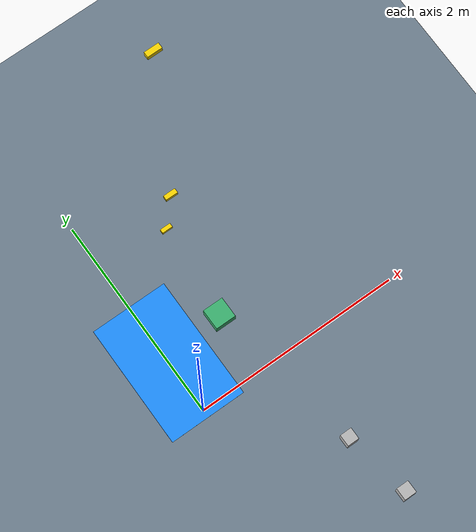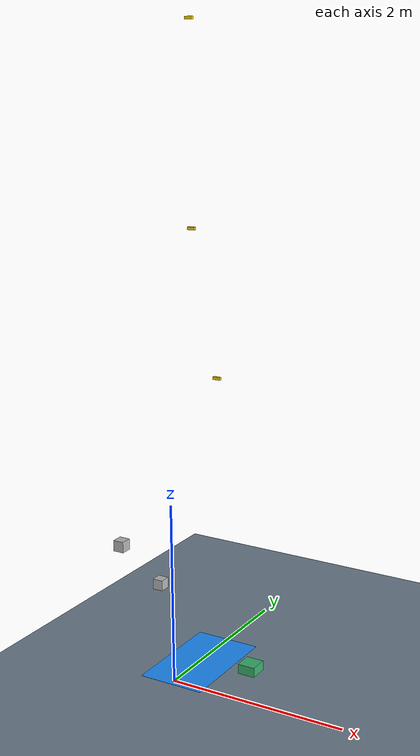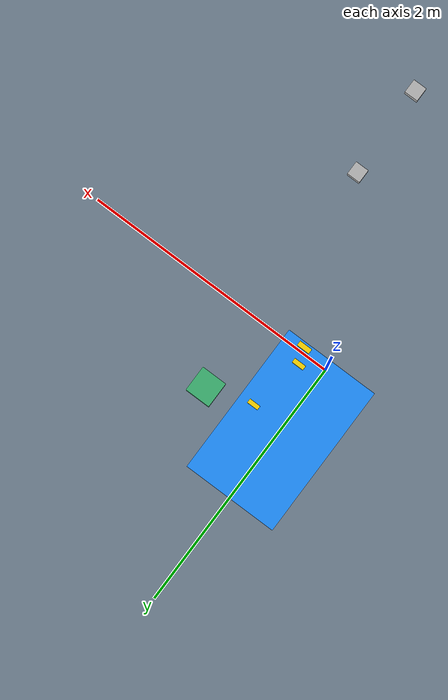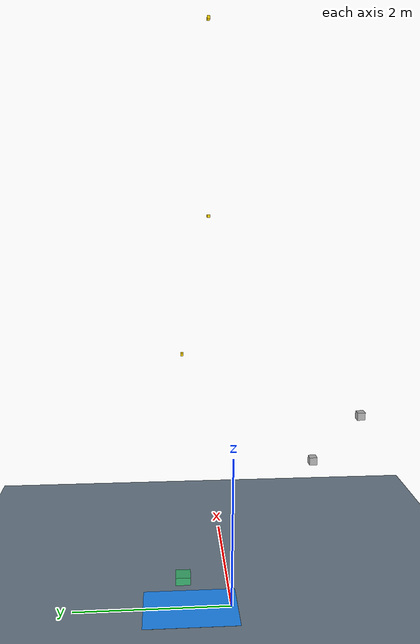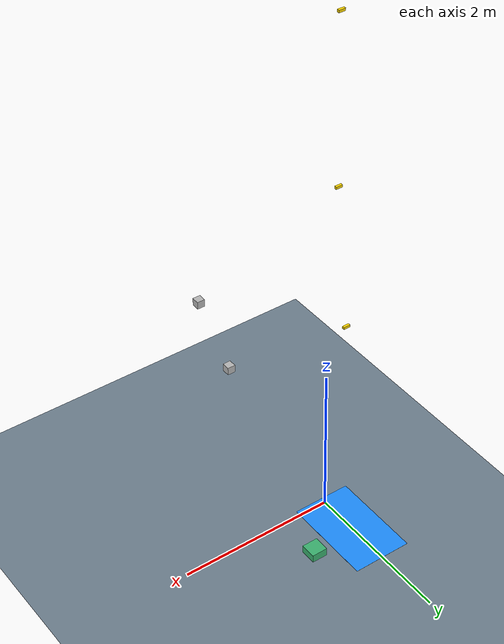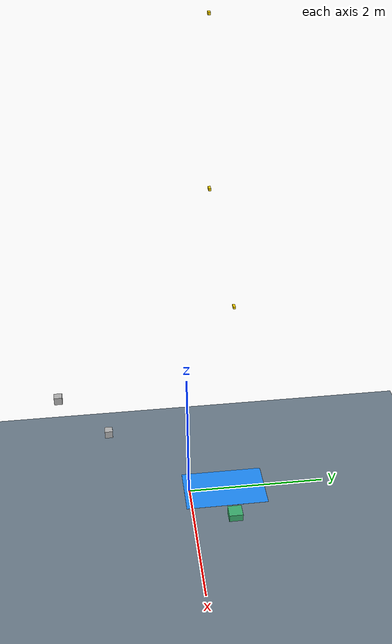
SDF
<sdf version='1.6'>
  <world name='default'>
    <plugin name="ros_link_attacher_plugin" filename="libgazebo_ros_link_attacher.so"/>

    <light name='sun' type='directional'>
      <cast_shadows>1</cast_shadows>
      <pose frame=''>0 0 10 0 -0 0</pose>
      <diffuse>0.8 0.8 0.8 1</diffuse>
      <specular>0.2 0.2 0.2 1</specular>
      <attenuation>
        <range>1000</range>
        <constant>0.9</constant>
        <linear>0.01</linear>
        <quadratic>0.001</quadratic>
      </attenuation>
      <direction>-0.5 0.1 -0.9</direction>
    </light>

    <model name='ground_plane'>
      <static>1</static>
      <link name='link'>
        <collision name='collision'>
          <geometry>
            <plane>
              <normal>0 0 1</normal>
              <size>100 100</size>
            </plane>
          </geometry>
          <surface>
            <contact>
              <collide_bitmask>65535</collide_bitmask>
              <ode/>
            </contact>
            <friction>
              <ode>
                <mu>100</mu>
                <mu2>50</mu2>
              </ode>
              <torsional>
                <ode/>
              </torsional>
            </friction>
            <bounce/>
          </surface>
          <max_contacts>10</max_contacts>
        </collision>
        <visual name='visual'>
          <cast_shadows>0</cast_shadows>
          <geometry>
            <plane>
              <normal>0 0 1</normal>
              <size>5 5</size>
            </plane>
          </geometry>
          <material>
            <lighting>1</lighting>
            <shader type='vertex'>
              <normal_map>__default__</normal_map>
            </shader>
            <ambient>0.43 0.5 0.56 1</ambient>
            <diffuse>0.43 0.5 0.56 1</diffuse>
            <specular>0.01 0.01 0.01 1</specular>
            <emissive>0 0 0 1</emissive>
          </material>
        </visual>
        <self_collide>0</self_collide>
        <enable_wind>0</enable_wind>
        <kinematic>0</kinematic>
      </link>
    </model>

    <gravity>0 0 -9.8</gravity>
    <magnetic_field>6e-06 2.3e-05 -4.2e-05</magnetic_field>
    <atmosphere type='adiabatic'/>
    <physics name='default_physics' default='0' type='ode'>
      <max_step_size>0.001</max_step_size>
      <real_time_factor>1</real_time_factor>
      <real_time_update_rate>1000</real_time_update_rate>
    </physics>
    <scene>
      <ambient>0.4 0.4 0.4 1</ambient>
      <background>0.7 0.7 0.7 1</background>
      <shadows>1</shadows>
    </scene>
    <audio>
      <device>default</device>
    </audio>
    <wind/>
    <spherical_coordinates>
      <surface_model>EARTH_WGS84</surface_model>
      <latitude_deg>0</latitude_deg>
      <longitude_deg>0</longitude_deg>
      <elevation>0</elevation>
      <heading_deg>0</heading_deg>
    </spherical_coordinates>

    <!-- The table top of the robot -->
    <model name='table'>
      <link name='link'>
        <inertial>
          <mass>1</mass>
          <inertia>
            <ixx>0.166667</ixx>
            <ixy>0</ixy>
            <ixz>0</ixz>
            <iyy>0.166667</iyy>
            <iyz>0</iyz>
            <izz>0.166667</izz>
          </inertia>
          <pose frame=''>0 0 0 0 -0 0</pose>
        </inertial>
        <pose frame=''>0 0 0 0 -0 0</pose>
        <gravity>1</gravity>
        <self_collide>0</self_collide>
        <kinematic>0</kinematic>
        <enable_wind>0</enable_wind>
        <visual name='visual'>
          <pose frame=''>0 0 0 0 -0 0</pose>
          <geometry>
            <box>
              <size>0.75 1.20 0.001</size>
            </box>
          </geometry>
          <material>
            <lighting>1</lighting>
            <shader type='vertex'>
              <normal_map>__default__</normal_map>
            </shader>
            <ambient>0.12 0.56 1 1</ambient>
            <diffuse>0.12 0.56 1 1</diffuse>
            <specular>0.01 0.01 0.01 1</specular>
            <emissive>0 0 0 1</emissive>
          </material>
          <transparency>0</transparency>
          <cast_shadows>1</cast_shadows>
        </visual>
        <collision name='collision'>
          <pose frame=''>0 0 0 0 -0 0</pose>
          <geometry>
            <box>
              <size>0.75 1.20 0.001</size>
            </box>
          </geometry>
        </collision>
      </link>
      <static>1</static>
      <allow_auto_disable>1</allow_auto_disable>
      <pose frame=''>0 0.525 0.0005 0 -0 0</pose>
    </model>

    <model name='goal'>
      <link name='link'>
        <inertial>
          <mass>1</mass>
          <inertia>
            <ixx>0.166667</ixx>
            <ixy>0</ixy>
            <ixz>0</ixz>
            <iyy>0.166667</iyy>
            <iyz>0</iyz>
            <izz>0.166667</izz>
          </inertia>
          <pose frame=''>0 0 0 0 -0 0</pose>
        </inertial>
        <self_collide>0</self_collide>
        <enable_wind>0</enable_wind>
        <kinematic>0</kinematic>
        <pose frame=''>0 0 0 0 -0 0</pose>
        <gravity>1</gravity>
        <visual name='visual'>
          <geometry>
            <box>
              <size>0.2 0.2 0.2</size>
            </box>
          </geometry>
          <material>
            <shader type='vertex'>
              <normal_map>__default__</normal_map>
            </shader>
            <ambient>0.23 0.7 0.44 1</ambient>
            <diffuse>0.23 0.7 0.44 1</diffuse>
            <specular>0.01 0.01 0.01 1</specular>
            <emissive>0 0 0 1</emissive>
          </material>
          <pose frame=''>0 0 0 0 -0 0</pose>
          <transparency>0</transparency>
          <cast_shadows>1</cast_shadows>
        </visual>
        <collision name='collision'>
          <surface>
            <contact>
              <ode>
                <max_vel>0</max_vel>
                <min_depth>0.001</min_depth>
              </ode>
            </contact>
          </surface>
          <pose frame=''>0 0 0 0 -0 0</pose>
          <geometry>
            <box>
              <size>0.07 0.07 0.05</size>
            </box>
          </geometry>
        </collision>
      </link>
      <static>0</static>
      <allow_auto_disable>1</allow_auto_disable>
      <pose frame=''>0.6 0.6 0.001 0 -0 0</pose>
    </model>

    <model name='block_1'>
      <link name='link'>
        <inertial>
          <mass>10</mass>
          <inertia>
            <ixx>0</ixx>
            <ixy>0</ixy>
            <ixz>0</ixz>
            <iyy>0</iyy>
            <iyz>0</iyz>
            <izz>0</izz>
          </inertia>
          <pose frame=''>0 0 0 0 -0 0</pose>
        </inertial>
        <self_collide>0</self_collide>
        <enable_wind>0</enable_wind>
        <kinematic>0</kinematic>
        <pose frame=''>0.1 0.3 0.841 0 -0 0</pose>
        <gravity>1</gravity>
        <visual name='visual'>
          <geometry>
            <box>
              <size>0.08 0.03 0.03</size>
            </box>
          </geometry>
          <material>
            <shader type='vertex'>
              <normal_map>__default__</normal_map>
            </shader>
            <ambient>1 0.85 0 1</ambient>
            <diffuse>1 0.85 0 1</diffuse>
            <specular>0.01 0.01 0.01 1</specular>
            <emissive>0 0 0 1</emissive>
          </material>
          <pose frame=''>0 0 0 0 -0 0</pose>
          <transparency>0</transparency>
          <cast_shadows>1</cast_shadows>
        </visual>
        <collision name='collision'>
          <surface>
            <contact>
              <ode>
                <max_vel>0</max_vel>
                <min_depth>0.001</min_depth>
              </ode>
            </contact>
          </surface>
          <pose frame=''>0 0 0 0 -0 0</pose>
          <geometry>
            <box>
              <size>0.08 0.03 0.03</size>
            </box>
          </geometry>
        </collision>
      </link>
      <static>0</static>
      <allow_auto_disable>1</allow_auto_disable>
      <pose frame=''>0.1 0.3 2.41 0 -0 0</pose>
    </model>

    <model name='block_2'>
      <link name='link'>
        <inertial>
          <mass>10</mass>
          <inertia>
            <ixx>0</ixx>
            <ixy>0</ixy>
            <ixz>0</ixz>
            <iyy>0</iyy>
            <iyz>0</iyz>
            <izz>0</izz>
          </inertia>
          <pose frame=''>0 0 0 0 -0 0</pose>
        </inertial>
        <self_collide>0</self_collide>
        <enable_wind>0</enable_wind>
        <kinematic>0</kinematic>
        <pose frame=''>0 0 0 0 -0 0</pose>
        <gravity>1</gravity>
        <visual name='visual'>
          <geometry>
            <box>
              <size>0.08 0.03 0.03</size>
            </box>
          </geometry>
          <material>
            <shader type='vertex'>
              <normal_map>__default__</normal_map>
            </shader>
            <ambient>1 0.85 0 1</ambient>
            <diffuse>1 0.85 0 1</diffuse>
            <specular>0.01 0.01 0.01 1</specular>
            <emissive>0 0 0 1</emissive>
          </material>
          <pose frame=''>0 0 0 0 -0 0</pose>
          <transparency>0</transparency>
          <cast_shadows>1</cast_shadows>
        </visual>
        <collision name='collision'>
          <surface>
            <contact>
              <ode>
                <max_vel>0</max_vel>
                <min_depth>0.001</min_depth>
              </ode>
            </contact>
          </surface>
          <pose frame=''>0 0 0 0 -0 0</pose>
          <geometry>
            <box>
              <size>0.08 0.03 0.03</size>
            </box>
          </geometry>
        </collision>
      </link>
      <static>0</static>
      <allow_auto_disable>1</allow_auto_disable>
      <pose frame=''>0.1 0.3 4.841 0 -0 0</pose>
    </model>

    <model name='block_none'>
      <link name='link'>
        <inertial>
          <mass>10</mass>
          <inertia>
            <ixx>0</ixx>
            <ixy>0</ixy>
            <ixz>0</ixz>
            <iyy>0</iyy>
            <iyz>0</iyz>
            <izz>0</izz>
          </inertia>
          <pose frame=''>0 0 0 0 -0 0</pose>
        </inertial>
        <self_collide>0</self_collide>
        <enable_wind>0</enable_wind>
        <kinematic>0</kinematic>
        <pose frame=''>0 0 0 0 -0 0</pose>
        <gravity>1</gravity>
        <visual name='visual'>
          <geometry>
            <box>
              <size>0.08 0.03 0.03</size>
            </box>
          </geometry>
          <material>
            <shader type='vertex'>
              <normal_map>__default__</normal_map>
            </shader>
            <ambient>1 0.85 0 1</ambient>
            <diffuse>1 0.85 0 1</diffuse>
            <specular>0.01 0.01 0.01 1</specular>
            <emissive>0 0 0 1</emissive>
          </material>
          <pose frame=''>0 0 0 0 -0 0</pose>
          <transparency>0</transparency>
          <cast_shadows>1</cast_shadows>
        </visual>
        <collision name='collision'>
          <surface>
            <contact>
              <ode>
                <max_vel>0</max_vel>
                <min_depth>0.001</min_depth>
              </ode>
            </contact>
          </surface>
          <pose frame=''>0 0 0 0 -0 0</pose>
          <geometry>
            <box>
              <size>0.08 0.03 0.03</size>
            </box>
          </geometry>
        </collision>
      </link>
      <static>0</static>
      <allow_auto_disable>1</allow_auto_disable>
      <pose frame=''>0.1 0.3 6.841 0 -0 0</pose>
    </model>

    <model name='block_5'>
      <link name='link'>
        <pose>0.3 0.3 2 1.5708 0 0</pose>
        <inertial>
          <pose>0.3 0.3 2 1.5708 0 0</pose>
          <mass>1</mass>
          <inertia>
            <ixx>0.008333</ixx>
            <ixy>0</ixy>
            <ixz>0</ixz>
            <iyy>0.008333</iyy>
            <iyz>0</iyz>
            <izz>0.008333</izz>
          </inertia>
        </inertial>
        <collision name='collision'>
          <surface>
            <bounce>
          <restitution_coefficient>0</restitution_coefficient>
            </bounce>
            <contact>
              <ode>
                <max_vel>0</max_vel>
                <min_depth>0.001</min_depth>
              </ode>
            </contact>
          </surface>
              <pose>0.3 0.3 2 1.5708 0 0</pose>
              <geometry>
                <box>
                  <size>0.1 0.1 0.1</size>
                </box>
              </geometry>
        </collision>
        <visual name='visual'>
              <pose>0.3 0.3 2 1.5708 0 0</pose>
              <geometry>
                <box>
                  <size>0.1 0.1 0.1</size>
                </box>
              </geometry>
        </visual>
      </link>
    </model>

    <model name='block_3'>
      <link name='link'>
        <pose>0.3 0.3 1.4 1.5708 0 0</pose>
        <inertial>
          <pose>0.3 0.3 1.4 1.5708 0 0</pose>
          <mass>1</mass>
          <inertia>
            <ixx>0.008333</ixx>
            <ixy>0</ixy>
            <ixz>0</ixz>
            <iyy>0.008333</iyy>
            <iyz>0</iyz>
            <izz>0.008333</izz>
          </inertia>
        </inertial>
        <collision name='collision'>
          <surface>
            <bounce>
          <restitution_coefficient>0</restitution_coefficient>
            </bounce>
            <contact>
              <ode>
                <max_vel>0</max_vel>
                <min_depth>0.001</min_depth>
              </ode>
            </contact>
          </surface>
              <pose>0.3 0.3 1.4 1.5708 0 0</pose>
              <geometry>
                <box>
                  <size>0.1 0.1 0.1</size>
                </box>
              </geometry>
        </collision>
        <visual name='visual'>
              <pose>0.3 0.3 1.4 1.5708 0 0</pose>
              <geometry>
                <box>
                  <size>0.1 0.1 0.1</size>
                </box>
              </geometry>
        </visual>
      </link>
    </model>

  </world>
</sdf>
